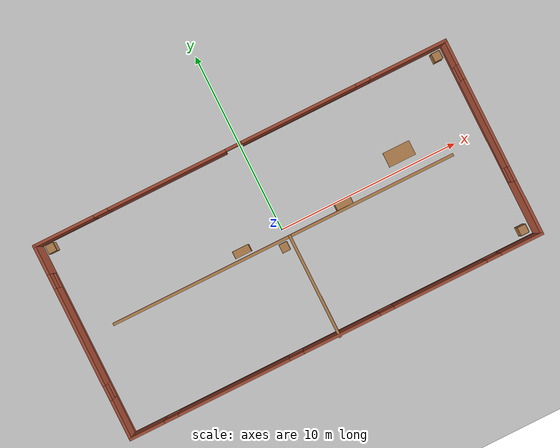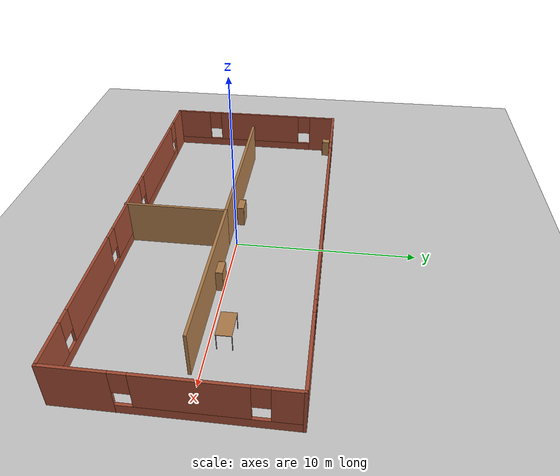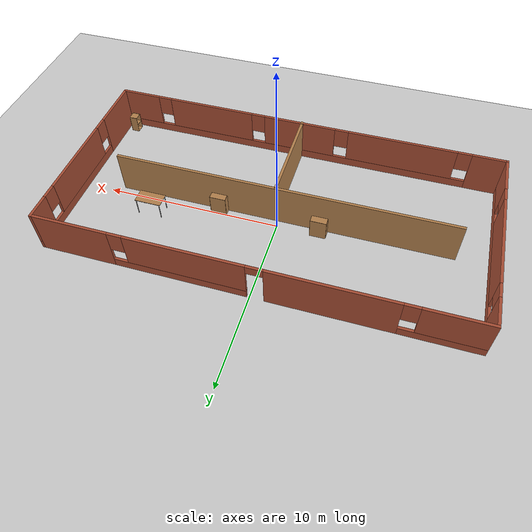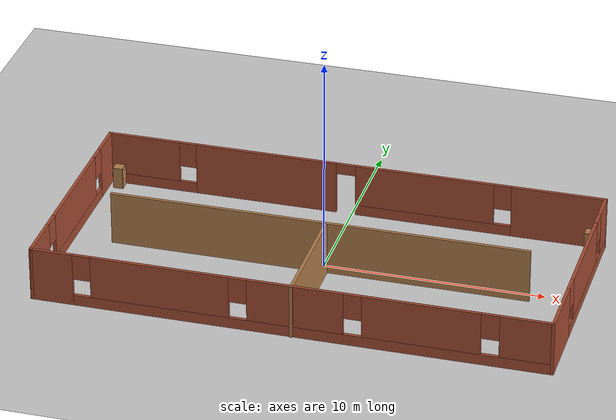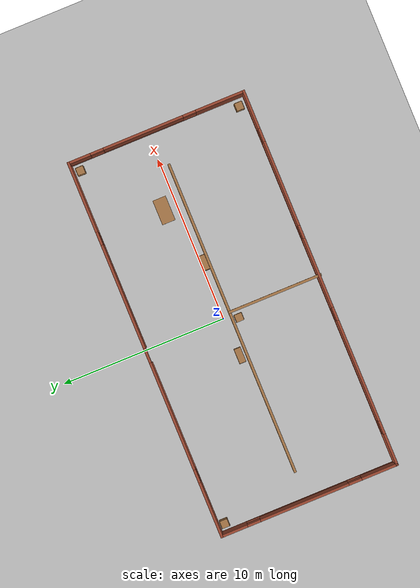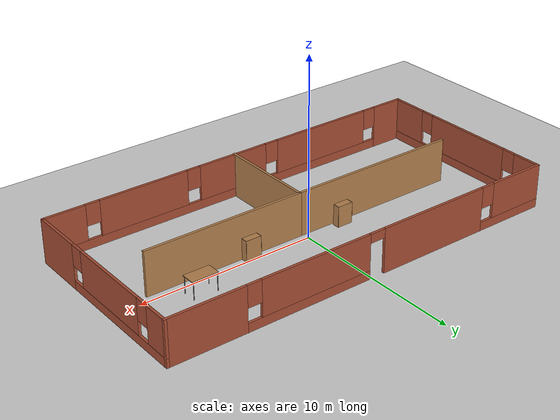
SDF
<sdf version="1.7">
 <world name="default">
  <light name="sun" type="directional">
   <pose>0 0 10 0 -0 0</pose>
   <diffuse>0.8 0.8 0.8 1</diffuse>
   <specular>0.2 0.2 0.2 1</specular>
   <attenuation>
    <range>1000</range>
    <constant>0.9</constant>
    <linear>0.01</linear>
    <quadratic>0.001</quadratic>
   </attenuation>
   <direction>-0.5 0.1 -0.9</direction>
   <spot><inner_angle>0</inner_angle><outer_angle>0</outer_angle><falloff>0</falloff></spot>
  </light>
  <model name="ground_plane">
   <static>1</static>
   <link name="link">
    <collision name="collision">
     <geometry><plane><normal>0 0 1</normal><size>100 100</size></plane></geometry>
     <surface><friction><ode><mu>100</mu><mu2>50</mu2></ode></friction></surface>
    </collision>
    <visual name="visual">
     <cast_shadows>0</cast_shadows>
     <geometry><plane><normal>0 0 1</normal><size>100 100</size></plane></geometry>
     <material>
      <script><uri>file://media/materials/scripts/gazebo.material</uri><name>Gazebo/Grey</name></script>
     </material>
    </visual>
   </link>
  </model>
  <gravity>0 0 -9.8</gravity>
  <magnetic_field>6e-06 2.3e-05 -4.2e-05</magnetic_field>
  <atmosphere type="adiabatic"/>
  <physics type="ode">
   <max_step_size>0.001</max_step_size>
   <real_time_factor>1</real_time_factor>
   <real_time_update_rate>1000</real_time_update_rate>
  </physics>
  <scene><ambient>0.4 0.4 0.4 1</ambient><background>0.7 0.7 0.7 1</background><shadows>1</shadows></scene>
  <spherical_coordinates>
   <surface_model>EARTH_WGS84</surface_model>
   <latitude_deg>0</latitude_deg>
   <longitude_deg>0</longitude_deg>
   <elevation>0</elevation>
   <heading_deg>0</heading_deg>
  </spherical_coordinates>
  <model name="House">
   <pose>0.052617 -0.61642 0 0 -0 0</pose>
   <link name="Wall_11">
    <pose>0 -5.39966 0 0 -0 0</pose>
    <visual name="Wall_11_Visual_0">
     <pose>-10.6404 0 1.25 0 -0 0</pose>
     <geometry><box><size>1.96927 0.15 2.5</size></box></geometry>
     <material>
      <script><uri>file://media/materials/scripts/gazebo.material</uri><name>Gazebo/Bricks</name></script>
      <ambient>1 1 1 1</ambient>
     </material>
     <meta><layer>0</layer></meta>
    </visual>
    <collision name="Wall_11_Collision_0">
     <geometry><box><size>1.96927 0.15 2.5</size></box></geometry>
     <pose>-10.6404 0 1.25 0 -0 0</pose>
    </collision>
    <visual name="Wall_11_Visual_1">
     <pose>0.984633 0 0.25 0 -0 0</pose>
     <geometry><box><size>21.2807 0.15 0.5</size></box></geometry>
     <material>
      <script><uri>file://media/materials/scripts/gazebo.material</uri><name>Gazebo/Bricks</name></script>
      <ambient>1 1 1 1</ambient>
     </material>
     <meta><layer>0</layer></meta>
    </visual>
    <collision name="Wall_11_Collision_1">
     <geometry><box><size>21.2807 0.15 0.5</size></box></geometry>
     <pose>0.984633 0 0.25 0 -0 0</pose>
    </collision>
    <visual name="Wall_11_Visual_2">
     <pose>-5.73786 0 1.5 0 -0 0</pose>
     <geometry><box><size>6.23575 0.15 2</size></box></geometry>
     <material>
      <script><uri>file://media/materials/scripts/gazebo.material</uri><name>Gazebo/Bricks</name></script>
      <ambient>1 1 1 1</ambient>
     </material>
     <meta><layer>0</layer></meta>
    </visual>
    <collision name="Wall_11_Collision_2">
     <geometry><box><size>6.23575 0.15 2</size></box></geometry>
     <pose>-5.73786 0 1.5 0 -0 0</pose>
    </collision>
    <visual name="Wall_11_Visual_3">
     <pose>0.319009 0 1.5 0 -0 0</pose>
     <geometry><box><size>4.27798 0.15 2</size></box></geometry>
     <material>
      <script><uri>file://media/materials/scripts/gazebo.material</uri><name>Gazebo/Bricks</name></script>
      <ambient>1 1 1 1</ambient>
     </material>
     <meta><layer>0</layer></meta>
    </visual>
    <collision name="Wall_11_Collision_3">
     <geometry><box><size>4.27798 0.15 2</size></box></geometry>
     <pose>0.319009 0 1.5 0 -0 0</pose>
    </collision>
    <visual name="Wall_11_Visual_4">
     <pose>5.85584 0 1.5 0 -0 0</pose>
     <geometry><box><size>5.19569 0.15 2</size></box></geometry>
     <material>
      <script><uri>file://media/materials/scripts/gazebo.material</uri><name>Gazebo/Bricks</name></script>
      <ambient>1 1 1 1</ambient>
     </material>
     <meta><layer>0</layer></meta>
    </visual>
    <collision name="Wall_11_Collision_4">
     <geometry><box><size>5.19569 0.15 2</size></box></geometry>
     <pose>5.85584 0 1.5 0 -0 0</pose>
    </collision>
    <visual name="Wall_11_Visual_5">
     <pose>10.4393 0 1.5 0 -0 0</pose>
     <geometry><box><size>2.37132 0.15 2</size></box></geometry>
     <material>
      <script><uri>file://media/materials/scripts/gazebo.material</uri><name>Gazebo/Bricks</name></script>
      <ambient>1 1 1 1</ambient>
     </material>
     <meta><layer>0</layer></meta>
    </visual>
    <collision name="Wall_11_Collision_5">
     <geometry><box><size>2.37132 0.15 2</size></box></geometry>
     <pose>10.4393 0 1.5 0 -0 0</pose>
    </collision>
    <visual name="Wall_11_Visual_6">
     <pose>-9.25573 0 1.9 0 -0 0</pose>
     <geometry><box><size>0.8 0.15 1.2</size></box></geometry>
     <material>
      <script><uri>file://media/materials/scripts/gazebo.material</uri><name>Gazebo/Bricks</name></script>
      <ambient>1 1 1 1</ambient>
     </material>
     <meta><layer>0</layer></meta>
    </visual>
    <collision name="Wall_11_Collision_6">
     <geometry><box><size>0.8 0.15 1.2</size></box></geometry>
     <pose>-9.25573 0 1.9 0 -0 0</pose>
    </collision>
    <visual name="Wall_11_Visual_7">
     <pose>-2.21998 0 1.9 0 -0 0</pose>
     <geometry><box><size>0.8 0.15 1.2</size></box></geometry>
     <material>
      <script><uri>file://media/materials/scripts/gazebo.material</uri><name>Gazebo/Bricks</name></script>
      <ambient>1 1 1 1</ambient>
     </material>
     <meta><layer>0</layer></meta>
    </visual>
    <collision name="Wall_11_Collision_7">
     <geometry><box><size>0.8 0.15 1.2</size></box></geometry>
     <pose>-2.21998 0 1.9 0 -0 0</pose>
    </collision>
    <visual name="Wall_11_Visual_8">
     <pose>2.858 0 1.9 0 -0 0</pose>
     <geometry><box><size>0.8 0.15 1.2</size></box></geometry>
     <material>
      <script><uri>file://media/materials/scripts/gazebo.material</uri><name>Gazebo/Bricks</name></script>
      <ambient>1 1 1 1</ambient>
     </material>
     <meta><layer>0</layer></meta>
    </visual>
    <collision name="Wall_11_Collision_8">
     <geometry><box><size>0.8 0.15 1.2</size></box></geometry>
     <pose>2.858 0 1.9 0 -0 0</pose>
    </collision>
    <visual name="Wall_11_Visual_9">
     <pose>8.85368 0 1.9 0 -0 0</pose>
     <geometry><box><size>0.8 0.15 1.2</size></box></geometry>
     <material>
      <script><uri>file://media/materials/scripts/gazebo.material</uri><name>Gazebo/Bricks</name></script>
      <ambient>1 1 1 1</ambient>
     </material>
     <meta><layer>0</layer></meta>
    </visual>
    <collision name="Wall_11_Collision_9">
     <geometry><box><size>0.8 0.15 1.2</size></box></geometry>
     <pose>8.85368 0 1.9 0 -0 0</pose>
    </collision>
   </link>
   <link name="Wall_12">
    <pose>11.55 0.025339 0 0 -0 1.5708</pose>
    <visual name="Wall_12_Visual_0">
     <pose>-3.97479 0 1.25 0 -0 0</pose>
     <geometry><box><size>3.05043 0.15 2.5</size></box></geometry>
     <material>
      <script><uri>file://media/materials/scripts/gazebo.material</uri><name>Gazebo/Bricks</name></script>
      <ambient>1 1 1 1</ambient>
     </material>
     <meta><layer>0</layer></meta>
    </visual>
    <collision name="Wall_12_Collision_0">
     <geometry><box><size>3.05043 0.15 2.5</size></box></geometry>
     <pose>-3.97479 0 1.25 0 -0 0</pose>
    </collision>
    <visual name="Wall_12_Visual_1">
     <pose>1.52521 0 0.25 0 -0 0</pose>
     <geometry><box><size>7.94957 0.15 0.5</size></box></geometry>
     <material>
      <script><uri>file://media/materials/scripts/gazebo.material</uri><name>Gazebo/Bricks</name></script>
      <ambient>1 1 1 1</ambient>
     </material>
     <meta><layer>0</layer></meta>
    </visual>
    <collision name="Wall_12_Collision_1">
     <geometry><box><size>7.94957 0.15 0.5</size></box></geometry>
     <pose>1.52521 0 0.25 0 -0 0</pose>
    </collision>
    <visual name="Wall_12_Visual_2">
     <pose>0.810614 0 1.5 0 -0 0</pose>
     <geometry><box><size>4.92037 0.15 2</size></box></geometry>
     <material>
      <script><uri>file://media/materials/scripts/gazebo.material</uri><name>Gazebo/Bricks</name></script>
      <ambient>1 1 1 1</ambient>
     </material>
     <meta><layer>0</layer></meta>
    </visual>
    <collision name="Wall_12_Collision_2">
     <geometry><box><size>4.92037 0.15 2</size></box></geometry>
     <pose>0.810614 0 1.5 0 -0 0</pose>
    </collision>
    <visual name="Wall_12_Visual_3">
     <pose>4.7854 0 1.5 0 -0 0</pose>
     <geometry><box><size>1.4292 0.15 2</size></box></geometry>
     <material>
      <script><uri>file://media/materials/scripts/gazebo.material</uri><name>Gazebo/Bricks</name></script>
      <ambient>1 1 1 1</ambient>
     </material>
     <meta><layer>0</layer></meta>
    </visual>
    <collision name="Wall_12_Collision_3">
     <geometry><box><size>1.4292 0.15 2</size></box></geometry>
     <pose>4.7854 0 1.5 0 -0 0</pose>
    </collision>
    <visual name="Wall_12_Visual_4">
     <pose>-2.04957 0 1.9 0 -0 0</pose>
     <geometry><box><size>0.8 0.15 1.2</size></box></geometry>
     <material>
      <script><uri>file://media/materials/scripts/gazebo.material</uri><name>Gazebo/Bricks</name></script>
      <ambient>1 1 1 1</ambient>
     </material>
     <meta><layer>0</layer></meta>
    </visual>
    <collision name="Wall_12_Collision_4">
     <geometry><box><size>0.8 0.15 1.2</size></box></geometry>
     <pose>-2.04957 0 1.9 0 -0 0</pose>
    </collision>
    <visual name="Wall_12_Visual_5">
     <pose>3.6708 0 1.9 0 -0 0</pose>
     <geometry><box><size>0.8 0.15 1.2</size></box></geometry>
     <material>
      <script><uri>file://media/materials/scripts/gazebo.material</uri><name>Gazebo/Bricks</name></script>
      <ambient>1 1 1 1</ambient>
     </material>
     <meta><layer>0</layer></meta>
    </visual>
    <collision name="Wall_12_Collision_5">
     <geometry><box><size>0.8 0.15 1.2</size></box></geometry>
     <pose>3.6708 0 1.9 0 -0 0</pose>
    </collision>
   </link>
   <link name="Wall_13">
    <pose>0 5.45034 0 0 -0 3.14159</pose>
    <visual name="Wall_13_Visual_0">
     <pose>-9.46045 0 1.25 0 -0 0</pose>
     <geometry><box><size>4.32909 0.15 2.5</size></box></geometry>
     <material>
      <script><uri>file://media/materials/scripts/gazebo.material</uri><name>Gazebo/Bricks</name></script>
      <ambient>1 1 1 1</ambient>
     </material>
     <meta><layer>0</layer></meta>
    </visual>
    <collision name="Wall_13_Collision_0">
     <geometry><box><size>4.32909 0.15 2.5</size></box></geometry>
     <pose>-9.46045 0 1.25 0 -0 0</pose>
    </collision>
    <visual name="Wall_13_Visual_1">
     <pose>4.11098 0 1.25 0 -0 0</pose>
     <geometry><box><size>6.61402 0.15 2.5</size></box></geometry>
     <material>
      <script><uri>file://media/materials/scripts/gazebo.material</uri><name>Gazebo/Bricks</name></script>
      <ambient>1 1 1 1</ambient>
     </material>
     <meta><layer>0</layer></meta>
    </visual>
    <collision name="Wall_13_Collision_1">
     <geometry><box><size>6.61402 0.15 2.5</size></box></geometry>
     <pose>4.11098 0 1.25 0 -0 0</pose>
    </collision>
    <visual name="Wall_13_Visual_2">
     <pose>-3.69597 0 0.25 0 -0 0</pose>
     <geometry><box><size>7.19988 0.15 0.5</size></box></geometry>
     <material>
      <script><uri>file://media/materials/scripts/gazebo.material</uri><name>Gazebo/Bricks</name></script>
      <ambient>1 1 1 1</ambient>
     </material>
     <meta><layer>0</layer></meta>
    </visual>
    <collision name="Wall_13_Collision_2">
     <geometry><box><size>7.19988 0.15 0.5</size></box></geometry>
     <pose>-3.69597 0 0.25 0 -0 0</pose>
    </collision>
    <visual name="Wall_13_Visual_3">
     <pose>9.5215 0 0.25 0 -0 0</pose>
     <geometry><box><size>4.20701 0.15 0.5</size></box></geometry>
     <material>
      <script><uri>file://media/materials/scripts/gazebo.material</uri><name>Gazebo/Bricks</name></script>
      <ambient>1 1 1 1</ambient>
     </material>
     <meta><layer>0</layer></meta>
    </visual>
    <collision name="Wall_13_Collision_3">
     <geometry><box><size>4.20701 0.15 0.5</size></box></geometry>
     <pose>9.5215 0 0.25 0 -0 0</pose>
    </collision>
    <visual name="Wall_13_Visual_4">
     <pose>-3.29597 0 1.5 0 -0 0</pose>
     <geometry><box><size>6.39988 0.15 2</size></box></geometry>
     <material>
      <script><uri>file://media/materials/scripts/gazebo.material</uri><name>Gazebo/Bricks</name></script>
      <ambient>1 1 1 1</ambient>
     </material>
     <meta><layer>0</layer></meta>
    </visual>
    <collision name="Wall_13_Collision_4">
     <geometry><box><size>6.39988 0.15 2</size></box></geometry>
     <pose>-3.29597 0 1.5 0 -0 0</pose>
    </collision>
    <visual name="Wall_13_Visual_5">
     <pose>-3.29597 0 1.5 0 -0 0</pose>
     <geometry><box><size>6.39988 0.15 2</size></box></geometry>
     <material>
      <script><uri>file://media/materials/scripts/gazebo.material</uri><name>Gazebo/Bricks</name></script>
      <ambient>1 1 1 1</ambient>
     </material>
     <meta><layer>0</layer></meta>
    </visual>
    <collision name="Wall_13_Collision_5">
     <geometry><box><size>6.39988 0.15 2</size></box></geometry>
     <pose>-3.29597 0 1.5 0 -0 0</pose>
    </collision>
    <visual name="Wall_13_Visual_6">
     <pose>9.9215 0 1.5 0 -0 0</pose>
     <geometry><box><size>3.40701 0.15 2</size></box></geometry>
     <material>
      <script><uri>file://media/materials/scripts/gazebo.material</uri><name>Gazebo/Bricks</name></script>
      <ambient>1 1 1 1</ambient>
     </material>
     <meta><layer>0</layer></meta>
    </visual>
    <collision name="Wall_13_Collision_6">
     <geometry><box><size>3.40701 0.15 2</size></box></geometry>
     <pose>9.9215 0 1.5 0 -0 0</pose>
    </collision>
    <visual name="Wall_13_Visual_7">
     <pose>-6.89591 0 1.9 0 -0 0</pose>
     <geometry><box><size>0.8 0.15 1.2</size></box></geometry>
     <material>
      <script><uri>file://media/materials/scripts/gazebo.material</uri><name>Gazebo/Bricks</name></script>
      <ambient>1 1 1 1</ambient>
     </material>
     <meta><layer>0</layer></meta>
    </visual>
    <collision name="Wall_13_Collision_7">
     <geometry><box><size>0.8 0.15 1.2</size></box></geometry>
     <pose>-6.89591 0 1.9 0 -0 0</pose>
    </collision>
    <visual name="Wall_13_Visual_8">
     <pose>7.81799 0 1.9 0 -0 0</pose>
     <geometry><box><size>0.8 0.15 1.2</size></box></geometry>
     <material>
      <script><uri>file://media/materials/scripts/gazebo.material</uri><name>Gazebo/Bricks</name></script>
      <ambient>1 1 1 1</ambient>
     </material>
     <meta><layer>0</layer></meta>
    </visual>
    <collision name="Wall_13_Collision_8">
     <geometry><box><size>0.8 0.15 1.2</size></box></geometry>
     <pose>7.81799 0 1.9 0 -0 0</pose>
    </collision>
    <visual name="Wall_13_Visual_9">
     <pose>0.353976 0 2.25 0 -0 0</pose>
     <geometry><box><size>0.9 0.15 0.5</size></box></geometry>
     <material>
      <script><uri>file://media/materials/scripts/gazebo.material</uri><name>Gazebo/Bricks</name></script>
      <ambient>1 1 1 1</ambient>
     </material>
     <meta><layer>0</layer></meta>
    </visual>
    <collision name="Wall_13_Collision_9">
     <geometry><box><size>0.9 0.15 0.5</size></box></geometry>
     <pose>0.353976 0 2.25 0 -0 0</pose>
    </collision>
    <visual name="Wall_13_Visual_10">
     <pose>0.353976 0 2.25 0 -0 0</pose>
     <geometry><box><size>0.9 0.15 0.5</size></box></geometry>
     <material>
      <script><uri>file://media/materials/scripts/gazebo.material</uri><name>Gazebo/Bricks</name></script>
      <ambient>1 1 1 1</ambient>
     </material>
     <meta><layer>0</layer></meta>
    </visual>
    <collision name="Wall_13_Collision_10">
     <geometry><box><size>0.9 0.15 0.5</size></box></geometry>
     <pose>0.353976 0 2.25 0 -0 0</pose>
    </collision>
   </link>
   <link name="Wall_15">
    <pose>-11.55 0.025339 0 0 -0 -1.5708</pose>
    <visual name="Wall_15_Visual_0">
     <pose>-4.66304 0 1.25 0 -0 0</pose>
     <geometry><box><size>1.67392 0.15 2.5</size></box></geometry>
     <material>
      <script><uri>file://media/materials/scripts/gazebo.material</uri><name>Gazebo/Bricks</name></script>
      <ambient>1 1 1 1</ambient>
     </material>
     <meta><layer>0</layer></meta>
    </visual>
    <collision name="Wall_15_Collision_0">
     <geometry><box><size>1.67392 0.15 2.5</size></box></geometry>
     <pose>-4.66304 0 1.25 0 -0 0</pose>
    </collision>
    <visual name="Wall_15_Visual_1">
     <pose>0.836961 0 0.25 0 -0 0</pose>
     <geometry><box><size>9.32608 0.15 0.5</size></box></geometry>
     <material>
      <script><uri>file://media/materials/scripts/gazebo.material</uri><name>Gazebo/Bricks</name></script>
      <ambient>1 1 1 1</ambient>
     </material>
     <meta><layer>0</layer></meta>
    </visual>
    <collision name="Wall_15_Collision_1">
     <geometry><box><size>9.32608 0.15 0.5</size></box></geometry>
     <pose>0.836961 0 0.25 0 -0 0</pose>
    </collision>
    <visual name="Wall_15_Visual_2">
     <pose>-0.29058 0 1.5 0 -0 0</pose>
     <geometry><box><size>5.471 0.15 2</size></box></geometry>
     <material>
      <script><uri>file://media/materials/scripts/gazebo.material</uri><name>Gazebo/Bricks</name></script>
      <ambient>1 1 1 1</ambient>
     </material>
     <meta><layer>0</layer></meta>
    </visual>
    <collision name="Wall_15_Collision_2">
     <geometry><box><size>5.471 0.15 2</size></box></geometry>
     <pose>-0.29058 0 1.5 0 -0 0</pose>
    </collision>
    <visual name="Wall_15_Visual_3">
     <pose>4.37246 0 1.5 0 -0 0</pose>
     <geometry><box><size>2.25508 0.15 2</size></box></geometry>
     <material>
      <script><uri>file://media/materials/scripts/gazebo.material</uri><name>Gazebo/Bricks</name></script>
      <ambient>1 1 1 1</ambient>
     </material>
     <meta><layer>0</layer></meta>
    </visual>
    <collision name="Wall_15_Collision_3">
     <geometry><box><size>2.25508 0.15 2</size></box></geometry>
     <pose>4.37246 0 1.5 0 -0 0</pose>
    </collision>
    <visual name="Wall_15_Visual_4">
     <pose>-3.42608 0 1.9 0 -0 0</pose>
     <geometry><box><size>0.8 0.15 1.2</size></box></geometry>
     <material>
      <script><uri>file://media/materials/scripts/gazebo.material</uri><name>Gazebo/Bricks</name></script>
      <ambient>1 1 1 1</ambient>
     </material>
     <meta><layer>0</layer></meta>
    </visual>
    <collision name="Wall_15_Collision_4">
     <geometry><box><size>0.8 0.15 1.2</size></box></geometry>
     <pose>-3.42608 0 1.9 0 -0 0</pose>
    </collision>
    <visual name="Wall_15_Visual_5">
     <pose>2.84492 0 1.9 0 -0 0</pose>
     <geometry><box><size>0.8 0.15 1.2</size></box></geometry>
     <material>
      <script><uri>file://media/materials/scripts/gazebo.material</uri><name>Gazebo/Bricks</name></script>
      <ambient>1 1 1 1</ambient>
     </material>
     <meta><layer>0</layer></meta>
    </visual>
    <collision name="Wall_15_Collision_5">
     <geometry><box><size>0.8 0.15 1.2</size></box></geometry>
     <pose>2.84492 0 1.9 0 -0 0</pose>
    </collision>
   </link>
   <link name="Wall_17">
    <collision name="Wall_17_Collision">
     <geometry><box><size>5.75 0.15 2.5</size></box></geometry>
     <pose>0 0 1.25 0 -0 0</pose>
    </collision>
    <visual name="Wall_17_Visual">
     <pose>0 0 1.25 0 -0 0</pose>
     <geometry><box><size>5.75 0.15 2.5</size></box></geometry>
     <material>
      <script><uri>file://media/materials/scripts/gazebo.material</uri><name>Gazebo/Wood</name></script>
      <ambient>1 1 1 1</ambient>
     </material>
     <meta><layer>0</layer></meta>
    </visual>
    <pose>0.166058 -2.65034 0 0 -0 1.5708</pose>
   </link>
   <link name="Wall_18">
    <collision name="Wall_18_Collision">
     <geometry><box><size>10 0.15 2.5</size></box></geometry>
     <pose>0 0 1.25 0 -0 0</pose>
    </collision>
    <visual name="Wall_18_Visual">
     <pose>0 0 1.25 0 -0 0</pose>
     <geometry><box><size>10 0.15 2.5</size></box></geometry>
     <material>
      <script><uri>file://media/materials/scripts/gazebo.material</uri><name>Gazebo/Wood</name></script>
      <ambient>1 1 1 1</ambient>
     </material>
     <meta><layer>0</layer></meta>
    </visual>
    <pose>-4.75894 0.149661 0 0 -0 3.14159</pose>
   </link>
   <link name="Wall_20">
    <collision name="Wall_20_Collision">
     <geometry><box><size>9.25 0.15 2.5</size></box></geometry>
     <pose>0 0 1.25 0 -0 0</pose>
    </collision>
    <visual name="Wall_20_Visual">
     <pose>0 0 1.25 0 -0 0</pose>
     <geometry><box><size>9.25 0.15 2.5</size></box></geometry>
     <material>
      <script><uri>file://media/materials/scripts/gazebo.material</uri><name>Gazebo/Wood</name></script>
      <ambient>1 1 1 1</ambient>
     </material>
     <meta><layer>0</layer></meta>
    </visual>
    <pose>4.71606 0.149661 0 0 -0 0</pose>
   </link>
   <static>1</static>
  </model>
  <model name="cabinet">
   <static>1</static>
   <link name="cabinet_bottom_plate">
    <inertial>
     <pose>0 0 -1 0 -0 0</pose>
     <inertia><ixx>2.05</ixx><ixy>0</ixy><ixz>0</ixz><iyy>2.05</iyy><iyz>0</iyz><izz>2.05</izz></inertia>
     <mass>25</mass>
    </inertial>
    <collision name="cabinet_bottom_plate_geom">
     <pose>0 0 0.01 0 -0 0</pose>
     <geometry><box><size>0.45 0.45 0.02</size></box></geometry>
    </collision>
    <visual name="cabinet_bottom_plate_geom_visual">
     <pose>0 0 0.01 0 -0 0</pose>
     <geometry><box><size>0.45 0.45 0.02</size></box></geometry>
     <material>
      <script><uri>file://media/materials/scripts/gazebo.material</uri><name>Gazebo/Wood</name></script>
     </material>
    </visual>
    <collision name="cabinet_bottom_plate_geom_cabinet_back_plate">
     <pose>0.235 0 0.51 0 -0 0</pose>
     <geometry><box><size>0.02 0.45 1.02</size></box></geometry>
    </collision>
    <visual name="cabinet_bottom_plate_geom_cabinet_back_plate_visual">
     <pose>0.235 0 0.51 0 -0 0</pose>
     <geometry><box><size>0.02 0.45 1.02</size></box></geometry>
     <material>
      <script><uri>file://media/materials/scripts/gazebo.material</uri><name>Gazebo/Wood</name></script>
     </material>
    </visual>
    <collision name="cabinet_bottom_plate_geom_cabinet_left_plate">
     <pose>0 0.235 0.51 0 -0 0</pose>
     <geometry><box><size>0.45 0.02 1.02</size></box></geometry>
    </collision>
    <visual name="cabinet_bottom_plate_geom_cabinet_left_plate_visual">
     <pose>0 0.235 0.51 0 -0 0</pose>
     <geometry><box><size>0.45 0.02 1.02</size></box></geometry>
     <material>
      <script><uri>file://media/materials/scripts/gazebo.material</uri><name>Gazebo/Wood</name></script>
     </material>
    </visual>
    <collision name="cabinet_bottom_plate_geom_cabinet_middle_plate">
     <pose>0 0 0.51 0 -0 0</pose>
     <geometry><box><size>0.45 0.45 0.02</size></box></geometry>
    </collision>
    <visual name="cabinet_bottom_plate_geom_cabinet_middle_plate_visual">
     <pose>0 0 0.51 0 -0 0</pose>
     <geometry><box><size>0.45 0.45 0.02</size></box></geometry>
     <material>
      <script><uri>file://media/materials/scripts/gazebo.material</uri><name>Gazebo/Wood</name></script>
     </material>
    </visual>
    <collision name="cabinet_bottom_plate_geom_cabinet_right_plate">
     <pose>0 -0.235 0.51 0 -0 0</pose>
     <geometry><box><size>0.45 0.02 1.02</size></box></geometry>
    </collision>
    <visual name="cabinet_bottom_plate_geom_cabinet_right_plate_visual">
     <pose>0 -0.235 0.51 0 -0 0</pose>
     <geometry><box><size>0.45 0.02 1.02</size></box></geometry>
     <material>
      <script><uri>file://media/materials/scripts/gazebo.material</uri><name>Gazebo/Wood</name></script>
     </material>
    </visual>
    <collision name="cabinet_bottom_plate_geom_cabinet_top_plate">
     <pose>0 0 1.01 0 -0 0</pose>
     <geometry><box><size>0.45 0.45 0.02</size></box></geometry>
    </collision>
    <visual name="cabinet_bottom_plate_geom_cabinet_top_plate_visual">
     <pose>0 0 1.01 0 -0 0</pose>
     <geometry><box><size>0.45 0.45 0.02</size></box></geometry>
     <material>
      <script><uri>file://media/materials/scripts/gazebo.material</uri><name>Gazebo/Wood</name></script>
     </material>
    </visual>
   </link>
   <pose>11.0292 -5.51821 0 0 -0 0</pose>
  </model>
  <model name="cabinet_0">
   <static>1</static>
   <link name="cabinet_bottom_plate">
    <inertial>
     <pose>0 0 -1 0 -0 0</pose>
     <inertia><ixx>2.05</ixx><ixy>0</ixy><ixz>0</ixz><iyy>2.05</iyy><iyz>0</iyz><izz>2.05</izz></inertia>
     <mass>25</mass>
    </inertial>
    <collision name="cabinet_bottom_plate_geom">
     <pose>0 0 0.01 0 -0 0</pose>
     <geometry><box><size>0.45 0.45 0.02</size></box></geometry>
    </collision>
    <visual name="cabinet_bottom_plate_geom_visual">
     <pose>0 0 0.01 0 -0 0</pose>
     <geometry><box><size>0.45 0.45 0.02</size></box></geometry>
     <material>
      <script><uri>file://media/materials/scripts/gazebo.material</uri><name>Gazebo/Wood</name></script>
     </material>
    </visual>
    <collision name="cabinet_bottom_plate_geom_cabinet_back_plate">
     <pose>0.235 0 0.51 0 -0 0</pose>
     <geometry><box><size>0.02 0.45 1.02</size></box></geometry>
    </collision>
    <visual name="cabinet_bottom_plate_geom_cabinet_back_plate_visual">
     <pose>0.235 0 0.51 0 -0 0</pose>
     <geometry><box><size>0.02 0.45 1.02</size></box></geometry>
     <material>
      <script><uri>file://media/materials/scripts/gazebo.material</uri><name>Gazebo/Wood</name></script>
     </material>
    </visual>
    <collision name="cabinet_bottom_plate_geom_cabinet_left_plate">
     <pose>0 0.235 0.51 0 -0 0</pose>
     <geometry><box><size>0.45 0.02 1.02</size></box></geometry>
    </collision>
    <visual name="cabinet_bottom_plate_geom_cabinet_left_plate_visual">
     <pose>0 0.235 0.51 0 -0 0</pose>
     <geometry><box><size>0.45 0.02 1.02</size></box></geometry>
     <material>
      <script><uri>file://media/materials/scripts/gazebo.material</uri><name>Gazebo/Wood</name></script>
     </material>
    </visual>
    <collision name="cabinet_bottom_plate_geom_cabinet_middle_plate">
     <pose>0 0 0.51 0 -0 0</pose>
     <geometry><box><size>0.45 0.45 0.02</size></box></geometry>
    </collision>
    <visual name="cabinet_bottom_plate_geom_cabinet_middle_plate_visual">
     <pose>0 0 0.51 0 -0 0</pose>
     <geometry><box><size>0.45 0.45 0.02</size></box></geometry>
     <material>
      <script><uri>file://media/materials/scripts/gazebo.material</uri><name>Gazebo/Wood</name></script>
     </material>
    </visual>
    <collision name="cabinet_bottom_plate_geom_cabinet_right_plate">
     <pose>0 -0.235 0.51 0 -0 0</pose>
     <geometry><box><size>0.45 0.02 1.02</size></box></geometry>
    </collision>
    <visual name="cabinet_bottom_plate_geom_cabinet_right_plate_visual">
     <pose>0 -0.235 0.51 0 -0 0</pose>
     <geometry><box><size>0.45 0.02 1.02</size></box></geometry>
     <material>
      <script><uri>file://media/materials/scripts/gazebo.material</uri><name>Gazebo/Wood</name></script>
     </material>
    </visual>
    <collision name="cabinet_bottom_plate_geom_cabinet_top_plate">
     <pose>0 0 1.01 0 -0 0</pose>
     <geometry><box><size>0.45 0.45 0.02</size></box></geometry>
    </collision>
    <visual name="cabinet_bottom_plate_geom_cabinet_top_plate_visual">
     <pose>0 0 1.01 0 -0 0</pose>
     <geometry><box><size>0.45 0.45 0.02</size></box></geometry>
     <material>
      <script><uri>file://media/materials/scripts/gazebo.material</uri><name>Gazebo/Wood</name></script>
     </material>
    </visual>
   </link>
   <pose>11.0642 4.39719 0 0 -0 0</pose>
  </model>
  <model name="cabinet_1">
   <static>1</static>
   <link name="cabinet_bottom_plate">
    <inertial>
     <pose>0 0 -1 0 -0 0</pose>
     <inertia><ixx>2.05</ixx><ixy>0</ixy><ixz>0</ixz><iyy>2.05</iyy><iyz>0</iyz><izz>2.05</izz></inertia>
     <mass>25</mass>
    </inertial>
    <collision name="cabinet_bottom_plate_geom">
     <pose>0 0 0.01 0 -0 0</pose>
     <geometry><box><size>0.45 0.45 0.02</size></box></geometry>
    </collision>
    <visual name="cabinet_bottom_plate_geom_visual">
     <pose>0 0 0.01 0 -0 0</pose>
     <geometry><box><size>0.45 0.45 0.02</size></box></geometry>
     <material>
      <script><uri>file://media/materials/scripts/gazebo.material</uri><name>Gazebo/Wood</name></script>
     </material>
    </visual>
    <collision name="cabinet_bottom_plate_geom_cabinet_back_plate">
     <pose>0.235 0 0.51 0 -0 0</pose>
     <geometry><box><size>0.02 0.45 1.02</size></box></geometry>
    </collision>
    <visual name="cabinet_bottom_plate_geom_cabinet_back_plate_visual">
     <pose>0.235 0 0.51 0 -0 0</pose>
     <geometry><box><size>0.02 0.45 1.02</size></box></geometry>
     <material>
      <script><uri>file://media/materials/scripts/gazebo.material</uri><name>Gazebo/Wood</name></script>
     </material>
    </visual>
    <collision name="cabinet_bottom_plate_geom_cabinet_left_plate">
     <pose>0 0.235 0.51 0 -0 0</pose>
     <geometry><box><size>0.45 0.02 1.02</size></box></geometry>
    </collision>
    <visual name="cabinet_bottom_plate_geom_cabinet_left_plate_visual">
     <pose>0 0.235 0.51 0 -0 0</pose>
     <geometry><box><size>0.45 0.02 1.02</size></box></geometry>
     <material>
      <script><uri>file://media/materials/scripts/gazebo.material</uri><name>Gazebo/Wood</name></script>
     </material>
    </visual>
    <collision name="cabinet_bottom_plate_geom_cabinet_middle_plate">
     <pose>0 0 0.51 0 -0 0</pose>
     <geometry><box><size>0.45 0.45 0.02</size></box></geometry>
    </collision>
    <visual name="cabinet_bottom_plate_geom_cabinet_middle_plate_visual">
     <pose>0 0 0.51 0 -0 0</pose>
     <geometry><box><size>0.45 0.45 0.02</size></box></geometry>
     <material>
      <script><uri>file://media/materials/scripts/gazebo.material</uri><name>Gazebo/Wood</name></script>
     </material>
    </visual>
    <collision name="cabinet_bottom_plate_geom_cabinet_right_plate">
     <pose>0 -0.235 0.51 0 -0 0</pose>
     <geometry><box><size>0.45 0.02 1.02</size></box></geometry>
    </collision>
    <visual name="cabinet_bottom_plate_geom_cabinet_right_plate_visual">
     <pose>0 -0.235 0.51 0 -0 0</pose>
     <geometry><box><size>0.45 0.02 1.02</size></box></geometry>
     <material>
      <script><uri>file://media/materials/scripts/gazebo.material</uri><name>Gazebo/Wood</name></script>
     </material>
    </visual>
    <collision name="cabinet_bottom_plate_geom_cabinet_top_plate">
     <pose>0 0 1.01 0 -0 0</pose>
     <geometry><box><size>0.45 0.45 0.02</size></box></geometry>
    </collision>
    <visual name="cabinet_bottom_plate_geom_cabinet_top_plate_visual">
     <pose>0 0 1.01 0 -0 0</pose>
     <geometry><box><size>0.45 0.45 0.02</size></box></geometry>
     <material>
      <script><uri>file://media/materials/scripts/gazebo.material</uri><name>Gazebo/Wood</name></script>
     </material>
    </visual>
   </link>
   <pose>-10.9934 4.44588 0 0 -0 0</pose>
  </model>
  <model name="cabinet_2">
   <static>1</static>
   <link name="cabinet_bottom_plate">
    <inertial>
     <pose>0 0 -1 0 -0 0</pose>
     <inertia><ixx>2.05</ixx><ixy>0</ixy><ixz>0</ixz><iyy>2.05</iyy><iyz>0</iyz><izz>2.05</izz></inertia>
     <mass>25</mass>
    </inertial>
    <collision name="cabinet_bottom_plate_geom">
     <pose>0 0 0.01 0 -0 0</pose>
     <geometry><box><size>0.45 0.45 0.02</size></box></geometry>
    </collision>
    <visual name="cabinet_bottom_plate_geom_visual">
     <pose>0 0 0.01 0 -0 0</pose>
     <geometry><box><size>0.45 0.45 0.02</size></box></geometry>
     <material>
      <script><uri>file://media/materials/scripts/gazebo.material</uri><name>Gazebo/Wood</name></script>
     </material>
    </visual>
    <collision name="cabinet_bottom_plate_geom_cabinet_back_plate">
     <pose>0.235 0 0.51 0 -0 0</pose>
     <geometry><box><size>0.02 0.45 1.02</size></box></geometry>
    </collision>
    <visual name="cabinet_bottom_plate_geom_cabinet_back_plate_visual">
     <pose>0.235 0 0.51 0 -0 0</pose>
     <geometry><box><size>0.02 0.45 1.02</size></box></geometry>
     <material>
      <script><uri>file://media/materials/scripts/gazebo.material</uri><name>Gazebo/Wood</name></script>
     </material>
    </visual>
    <collision name="cabinet_bottom_plate_geom_cabinet_left_plate">
     <pose>0 0.235 0.51 0 -0 0</pose>
     <geometry><box><size>0.45 0.02 1.02</size></box></geometry>
    </collision>
    <visual name="cabinet_bottom_plate_geom_cabinet_left_plate_visual">
     <pose>0 0.235 0.51 0 -0 0</pose>
     <geometry><box><size>0.45 0.02 1.02</size></box></geometry>
     <material>
      <script><uri>file://media/materials/scripts/gazebo.material</uri><name>Gazebo/Wood</name></script>
     </material>
    </visual>
    <collision name="cabinet_bottom_plate_geom_cabinet_middle_plate">
     <pose>0 0 0.51 0 -0 0</pose>
     <geometry><box><size>0.45 0.45 0.02</size></box></geometry>
    </collision>
    <visual name="cabinet_bottom_plate_geom_cabinet_middle_plate_visual">
     <pose>0 0 0.51 0 -0 0</pose>
     <geometry><box><size>0.45 0.45 0.02</size></box></geometry>
     <material>
      <script><uri>file://media/materials/scripts/gazebo.material</uri><name>Gazebo/Wood</name></script>
     </material>
    </visual>
    <collision name="cabinet_bottom_plate_geom_cabinet_right_plate">
     <pose>0 -0.235 0.51 0 -0 0</pose>
     <geometry><box><size>0.45 0.02 1.02</size></box></geometry>
    </collision>
    <visual name="cabinet_bottom_plate_geom_cabinet_right_plate_visual">
     <pose>0 -0.235 0.51 0 -0 0</pose>
     <geometry><box><size>0.45 0.02 1.02</size></box></geometry>
     <material>
      <script><uri>file://media/materials/scripts/gazebo.material</uri><name>Gazebo/Wood</name></script>
     </material>
    </visual>
    <collision name="cabinet_bottom_plate_geom_cabinet_top_plate">
     <pose>0 0 1.01 0 -0 0</pose>
     <geometry><box><size>0.45 0.45 0.02</size></box></geometry>
    </collision>
    <visual name="cabinet_bottom_plate_geom_cabinet_top_plate_visual">
     <pose>0 0 1.01 0 -0 0</pose>
     <geometry><box><size>0.45 0.45 0.02</size></box></geometry>
     <material>
      <script><uri>file://media/materials/scripts/gazebo.material</uri><name>Gazebo/Wood</name></script>
     </material>
    </visual>
   </link>
   <pose>-0.276733 -0.859676 0 0 -0 0</pose>
  </model>
  <model name="bookshelf">
   <static>1</static>
   <link name="link">
    <inertial><mass>1</mass></inertial>
    <collision name="back">
     <pose>0 0.005 0.6 0 -0 0</pose>
     <geometry><box><size>0.9 0.01 1.2</size></box></geometry>
    </collision>
    <visual name="visual1">
     <pose>0 0.005 0.6 0 -0 0</pose>
     <geometry><box><size>0.9 0.01 1.2</size></box></geometry>
     <material>
      <script><uri>file://media/materials/scripts/gazebo.material</uri><name>Gazebo/Wood</name></script>
     </material>
    </visual>
    <collision name="left_side">
     <pose>0.45 -0.195 0.6 0 -0 0</pose>
     <geometry><box><size>0.02 0.4 1.2</size></box></geometry>
    </collision>
    <visual name="visual2">
     <pose>0.45 -0.195 0.6 0 -0 0</pose>
     <geometry><box><size>0.02 0.4 1.2</size></box></geometry>
     <material>
      <script><uri>file://media/materials/scripts/gazebo.material</uri><name>Gazebo/Wood</name></script>
     </material>
    </visual>
    <collision name="right_side">
     <pose>-0.45 -0.195 0.6 0 -0 0</pose>
     <geometry><box><size>0.02 0.4 1.2</size></box></geometry>
    </collision>
    <visual name="visual3">
     <pose>-0.45 -0.195 0.6 0 -0 0</pose>
     <geometry><box><size>0.02 0.4 1.2</size></box></geometry>
     <material>
      <script><uri>file://media/materials/scripts/gazebo.material</uri><name>Gazebo/Wood</name></script>
     </material>
    </visual>
    <collision name="bottom">
     <pose>0 -0.195 0.03 0 -0 0</pose>
     <geometry><box><size>0.88 0.4 0.06</size></box></geometry>
    </collision>
    <visual name="visual4">
     <pose>0 -0.195 0.03 0 -0 0</pose>
     <geometry><box><size>0.88 0.4 0.06</size></box></geometry>
     <material>
      <script><uri>file://media/materials/scripts/gazebo.material</uri><name>Gazebo/Wood</name></script>
     </material>
    </visual>
    <collision name="top">
     <pose>0 -0.195 1.19 0 -0 0</pose>
     <geometry><box><size>0.88 0.4 0.02</size></box></geometry>
    </collision>
    <visual name="visual5">
     <pose>0 -0.195 1.19 0 -0 0</pose>
     <geometry><box><size>0.88 0.4 0.02</size></box></geometry>
     <material>
      <script><uri>file://media/materials/scripts/gazebo.material</uri><name>Gazebo/Wood</name></script>
     </material>
    </visual>
    <collision name="low_shelf">
     <pose>0 -0.195 0.43 0 -0 0</pose>
     <geometry><box><size>0.88 0.4 0.02</size></box></geometry>
    </collision>
    <visual name="visual6">
     <pose>0 -0.195 0.43 0 -0 0</pose>
     <geometry><box><size>0.88 0.4 0.02</size></box></geometry>
     <material>
      <script><uri>file://media/materials/scripts/gazebo.material</uri><name>Gazebo/Wood</name></script>
     </material>
    </visual>
    <collision name="high_shelf">
     <pose>0 -0.195 0.8 0 -0 0</pose>
     <geometry><box><size>0.88 0.4 0.02</size></box></geometry>
    </collision>
    <visual name="visual7">
     <pose>0 -0.195 0.8 0 -0 0</pose>
     <geometry><box><size>0.88 0.4 0.02</size></box></geometry>
     <material>
      <script><uri>file://media/materials/scripts/gazebo.material</uri><name>Gazebo/Wood</name></script>
     </material>
    </visual>
   </link>
   <pose>3.42623 -0.01671 0 0 -0 0</pose>
  </model>
  <model name="bookshelf_0">
   <static>1</static>
   <link name="link">
    <inertial><mass>1</mass></inertial>
    <collision name="back">
     <pose>0 0.005 0.6 0 -0 0</pose>
     <geometry><box><size>0.9 0.01 1.2</size></box></geometry>
    </collision>
    <visual name="visual1">
     <pose>0 0.005 0.6 0 -0 0</pose>
     <geometry><box><size>0.9 0.01 1.2</size></box></geometry>
     <material>
      <script><uri>file://media/materials/scripts/gazebo.material</uri><name>Gazebo/Wood</name></script>
     </material>
    </visual>
    <collision name="left_side">
     <pose>0.45 -0.195 0.6 0 -0 0</pose>
     <geometry><box><size>0.02 0.4 1.2</size></box></geometry>
    </collision>
    <visual name="visual2">
     <pose>0.45 -0.195 0.6 0 -0 0</pose>
     <geometry><box><size>0.02 0.4 1.2</size></box></geometry>
     <material>
      <script><uri>file://media/materials/scripts/gazebo.material</uri><name>Gazebo/Wood</name></script>
     </material>
    </visual>
    <collision name="right_side">
     <pose>-0.45 -0.195 0.6 0 -0 0</pose>
     <geometry><box><size>0.02 0.4 1.2</size></box></geometry>
    </collision>
    <visual name="visual3">
     <pose>-0.45 -0.195 0.6 0 -0 0</pose>
     <geometry><box><size>0.02 0.4 1.2</size></box></geometry>
     <material>
      <script><uri>file://media/materials/scripts/gazebo.material</uri><name>Gazebo/Wood</name></script>
     </material>
    </visual>
    <collision name="bottom">
     <pose>0 -0.195 0.03 0 -0 0</pose>
     <geometry><box><size>0.88 0.4 0.06</size></box></geometry>
    </collision>
    <visual name="visual4">
     <pose>0 -0.195 0.03 0 -0 0</pose>
     <geometry><box><size>0.88 0.4 0.06</size></box></geometry>
     <material>
      <script><uri>file://media/materials/scripts/gazebo.material</uri><name>Gazebo/Wood</name></script>
     </material>
    </visual>
    <collision name="top">
     <pose>0 -0.195 1.19 0 -0 0</pose>
     <geometry><box><size>0.88 0.4 0.02</size></box></geometry>
    </collision>
    <visual name="visual5">
     <pose>0 -0.195 1.19 0 -0 0</pose>
     <geometry><box><size>0.88 0.4 0.02</size></box></geometry>
     <material>
      <script><uri>file://media/materials/scripts/gazebo.material</uri><name>Gazebo/Wood</name></script>
     </material>
    </visual>
    <collision name="low_shelf">
     <pose>0 -0.195 0.43 0 -0 0</pose>
     <geometry><box><size>0.88 0.4 0.02</size></box></geometry>
    </collision>
    <visual name="visual6">
     <pose>0 -0.195 0.43 0 -0 0</pose>
     <geometry><box><size>0.88 0.4 0.02</size></box></geometry>
     <material>
      <script><uri>file://media/materials/scripts/gazebo.material</uri><name>Gazebo/Wood</name></script>
     </material>
    </visual>
    <collision name="high_shelf">
     <pose>0 -0.195 0.8 0 -0 0</pose>
     <geometry><box><size>0.88 0.4 0.02</size></box></geometry>
    </collision>
    <visual name="visual7">
     <pose>0 -0.195 0.8 0 -0 0</pose>
     <geometry><box><size>0.88 0.4 0.02</size></box></geometry>
     <material>
      <script><uri>file://media/materials/scripts/gazebo.material</uri><name>Gazebo/Wood</name></script>
     </material>
    </visual>
   </link>
   <pose>-2.32481 0.119382 0 0 -0 0</pose>
  </model>
  <model name="table">
   <static>1</static>
   <link name="link">
    <collision name="surface">
     <pose>0 0 1 0 -0 0</pose>
     <geometry><box><size>1.5 0.8 0.03</size></box></geometry>
     <surface><friction><ode><mu>0.6</mu><mu2>0.6</mu2></ode></friction></surface>
    </collision>
    <visual name="visual1">
     <pose>0 0 1 0 -0 0</pose>
     <geometry><box><size>1.5 0.8 0.03</size></box></geometry>
     <material>
      <script><uri>file://media/materials/scripts/gazebo.material</uri><name>Gazebo/Wood</name></script>
     </material>
    </visual>
    <collision name="front_left_leg">
     <pose>0.68 0.38 0.5 0 -0 0</pose>
     <geometry><cylinder><radius>0.02</radius><length>1</length></cylinder></geometry>
    </collision>
    <visual name="front_left_leg">
     <pose>0.68 0.38 0.5 0 -0 0</pose>
     <geometry><cylinder><radius>0.02</radius><length>1</length></cylinder></geometry>
     <material>
      <script><uri>file://media/materials/scripts/gazebo.material</uri><name>Gazebo/Grey</name></script>
     </material>
    </visual>
    <collision name="front_right_leg">
     <pose>0.68 -0.38 0.5 0 -0 0</pose>
     <geometry><cylinder><radius>0.02</radius><length>1</length></cylinder></geometry>
    </collision>
    <visual name="front_right_leg">
     <pose>0.68 -0.38 0.5 0 -0 0</pose>
     <geometry><cylinder><radius>0.02</radius><length>1</length></cylinder></geometry>
     <material>
      <script><uri>file://media/materials/scripts/gazebo.material</uri><name>Gazebo/Grey</name></script>
     </material>
    </visual>
    <collision name="back_right_leg">
     <pose>-0.68 -0.38 0.5 0 -0 0</pose>
     <geometry><cylinder><radius>0.02</radius><length>1</length></cylinder></geometry>
    </collision>
    <visual name="back_right_leg">
     <pose>-0.68 -0.38 0.5 0 -0 0</pose>
     <geometry><cylinder><radius>0.02</radius><length>1</length></cylinder></geometry>
     <material>
      <script><uri>file://media/materials/scripts/gazebo.material</uri><name>Gazebo/Grey</name></script>
     </material>
    </visual>
    <collision name="back_left_leg">
     <pose>-0.68 0.38 0.5 0 -0 0</pose>
     <geometry><cylinder><radius>0.02</radius><length>1</length></cylinder></geometry>
    </collision>
    <visual name="back_left_leg">
     <pose>-0.68 0.38 0.5 0 -0 0</pose>
     <geometry><cylinder><radius>0.02</radius><length>1</length></cylinder></geometry>
     <material>
      <script><uri>file://media/materials/scripts/gazebo.material</uri><name>Gazebo/Grey</name></script>
     </material>
    </visual>
   </link>
   <pose>7.10154 0.801148 0 0 -0 0</pose>
  </model>
 </world>
</sdf>
